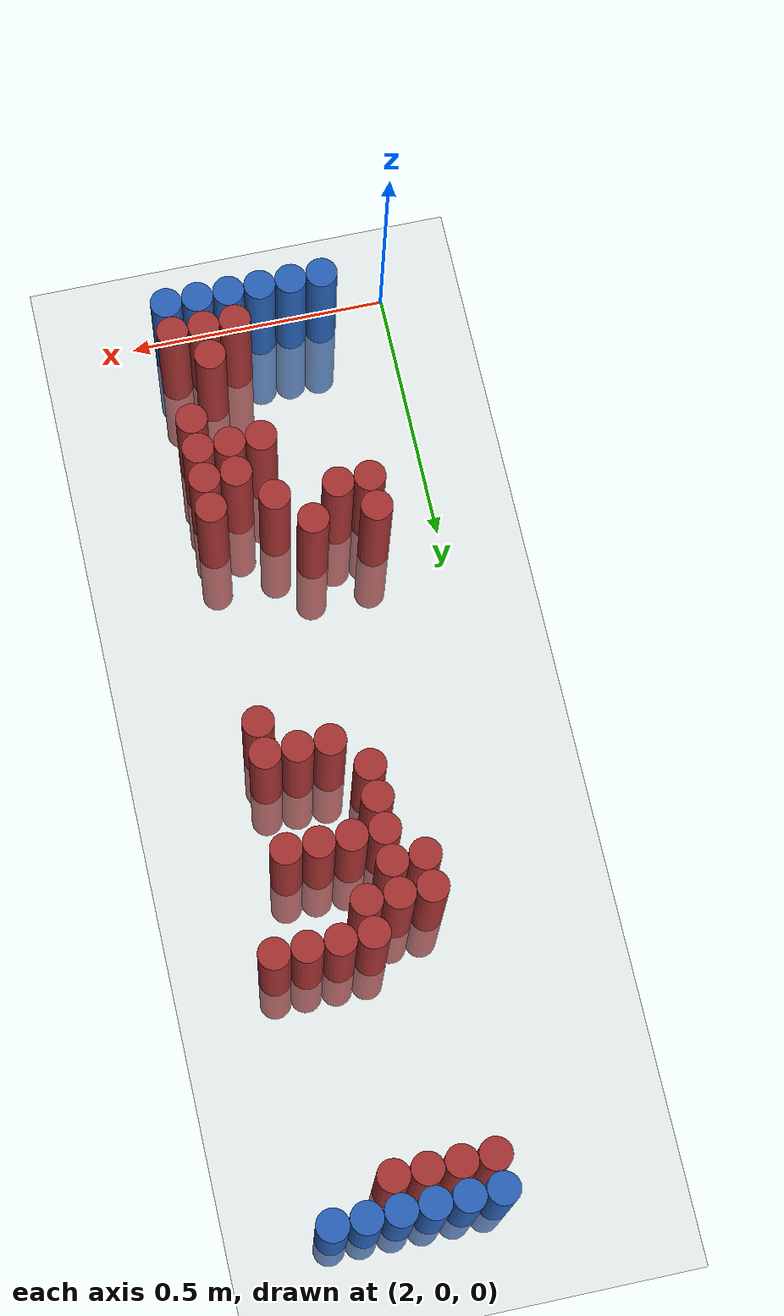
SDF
<sdf version="1.6">
 <world name="default">
  <model name="ground_plane">
   <static>1</static>
   <link name="link">
    <collision name="collision">
     <geometry><plane><normal>0 0 1</normal><size>100 100</size></plane></geometry>
     <surface><friction><ode><mu>100</mu><mu2>50</mu2></ode></friction></surface>
    </collision>
    <visual name="visual">
     <cast_shadows>0</cast_shadows>
     <geometry><plane><normal>0 0 1</normal><size>100 100</size></plane></geometry>
     <material>
      <script><uri>file://media/materials/scripts/gazebo.material</uri><name>Gazebo/Grey</name></script>
     </material>
    </visual>
   </link>
  </model>
  <model name="unit_cylinder_97">
   <static>1</static>
   <pose>2.190000 1.770000 0.000000 0.000000 0.000000 0.000000</pose>
   <link name="link">
    <inertial>
     <mass>1</mass>
     <inertia><ixx>0.145833</ixx><ixy>0</ixy><ixz>0</ixz><iyy>0.145833</iyy><iyz>0</iyz><izz>0.125</izz></inertia>
    </inertial>
    <collision name="collision">
     <geometry><cylinder><radius>0.030000</radius><length>0.5</length></cylinder></geometry>
    </collision>
    <visual name="visual">
     <geometry><cylinder><radius>0.030000</radius><length>0.5</length></cylinder></geometry>
     <material>
      <ambient>0.152000 0.379000 0.720000 1</ambient>
      <diffuse>0.152000 0.379000 0.720000 1</diffuse>
     </material>
     <material>
      <script><name>Gazebo/Grey</name><uri>file://media/materials/scripts/gazebo.material</uri></script>
     </material>
    </visual>
   </link>
  </model>
  <model name="unit_cylinder_98">
   <static>1</static>
   <pose>2.250000 1.770000 0.000000 0.000000 0.000000 0.000000</pose>
   <link name="link">
    <inertial>
     <mass>1</mass>
     <inertia><ixx>0.145833</ixx><ixy>0</ixy><ixz>0</ixz><iyy>0.145833</iyy><iyz>0</iyz><izz>0.125</izz></inertia>
    </inertial>
    <collision name="collision">
     <geometry><cylinder><radius>0.030000</radius><length>0.5</length></cylinder></geometry>
    </collision>
    <visual name="visual">
     <geometry><cylinder><radius>0.030000</radius><length>0.5</length></cylinder></geometry>
     <material>
      <ambient>0.152000 0.379000 0.720000 1</ambient>
      <diffuse>0.152000 0.379000 0.720000 1</diffuse>
     </material>
     <material>
      <script><name>Gazebo/Grey</name><uri>file://media/materials/scripts/gazebo.material</uri></script>
     </material>
    </visual>
   </link>
  </model>
  <model name="unit_cylinder_99">
   <static>1</static>
   <pose>2.310000 1.770000 0.000000 0.000000 0.000000 0.000000</pose>
   <link name="link">
    <inertial>
     <mass>1</mass>
     <inertia><ixx>0.145833</ixx><ixy>0</ixy><ixz>0</ixz><iyy>0.145833</iyy><iyz>0</iyz><izz>0.125</izz></inertia>
    </inertial>
    <collision name="collision">
     <geometry><cylinder><radius>0.030000</radius><length>0.5</length></cylinder></geometry>
    </collision>
    <visual name="visual">
     <geometry><cylinder><radius>0.030000</radius><length>0.5</length></cylinder></geometry>
     <material>
      <ambient>0.152000 0.379000 0.720000 1</ambient>
      <diffuse>0.152000 0.379000 0.720000 1</diffuse>
     </material>
     <material>
      <script><name>Gazebo/Grey</name><uri>file://media/materials/scripts/gazebo.material</uri></script>
     </material>
    </visual>
   </link>
  </model>
  <model name="unit_cylinder_100">
   <static>1</static>
   <pose>2.370000 1.770000 0.000000 0.000000 0.000000 0.000000</pose>
   <link name="link">
    <inertial>
     <mass>1</mass>
     <inertia><ixx>0.145833</ixx><ixy>0</ixy><ixz>0</ixz><iyy>0.145833</iyy><iyz>0</iyz><izz>0.125</izz></inertia>
    </inertial>
    <collision name="collision">
     <geometry><cylinder><radius>0.030000</radius><length>0.5</length></cylinder></geometry>
    </collision>
    <visual name="visual">
     <geometry><cylinder><radius>0.030000</radius><length>0.5</length></cylinder></geometry>
     <material>
      <ambient>0.152000 0.379000 0.720000 1</ambient>
      <diffuse>0.152000 0.379000 0.720000 1</diffuse>
     </material>
     <material>
      <script><name>Gazebo/Grey</name><uri>file://media/materials/scripts/gazebo.material</uri></script>
     </material>
    </visual>
   </link>
  </model>
  <model name="unit_cylinder_101">
   <static>1</static>
   <pose>2.430000 1.770000 0.000000 0.000000 0.000000 0.000000</pose>
   <link name="link">
    <inertial>
     <mass>1</mass>
     <inertia><ixx>0.145833</ixx><ixy>0</ixy><ixz>0</ixz><iyy>0.145833</iyy><iyz>0</iyz><izz>0.125</izz></inertia>
    </inertial>
    <collision name="collision">
     <geometry><cylinder><radius>0.030000</radius><length>0.5</length></cylinder></geometry>
    </collision>
    <visual name="visual">
     <geometry><cylinder><radius>0.030000</radius><length>0.5</length></cylinder></geometry>
     <material>
      <ambient>0.152000 0.379000 0.720000 1</ambient>
      <diffuse>0.152000 0.379000 0.720000 1</diffuse>
     </material>
     <material>
      <script><name>Gazebo/Grey</name><uri>file://media/materials/scripts/gazebo.material</uri></script>
     </material>
    </visual>
   </link>
  </model>
  <model name="unit_cylinder_102">
   <static>1</static>
   <pose>2.490000 1.770000 0.000000 0.000000 0.000000 0.000000</pose>
   <link name="link">
    <inertial>
     <mass>1</mass>
     <inertia><ixx>0.145833</ixx><ixy>0</ixy><ixz>0</ixz><iyy>0.145833</iyy><iyz>0</iyz><izz>0.125</izz></inertia>
    </inertial>
    <collision name="collision">
     <geometry><cylinder><radius>0.030000</radius><length>0.5</length></cylinder></geometry>
    </collision>
    <visual name="visual">
     <geometry><cylinder><radius>0.030000</radius><length>0.5</length></cylinder></geometry>
     <material>
      <ambient>0.152000 0.379000 0.720000 1</ambient>
      <diffuse>0.152000 0.379000 0.720000 1</diffuse>
     </material>
     <material>
      <script><name>Gazebo/Grey</name><uri>file://media/materials/scripts/gazebo.material</uri></script>
     </material>
    </visual>
   </link>
  </model>
  <model name="unit_cylinder_126">
   <static>1</static>
   <pose>2.190000 1.710000 0.000000 0.000000 0.000000 0.000000</pose>
   <link name="link">
    <inertial>
     <mass>1</mass>
     <inertia><ixx>0.145833</ixx><ixy>0</ixy><ixz>0</ixz><iyy>0.145833</iyy><iyz>0</iyz><izz>0.125</izz></inertia>
    </inertial>
    <collision name="collision">
     <geometry><cylinder><radius>0.030000</radius><length>0.5</length></cylinder></geometry>
    </collision>
    <visual name="visual">
     <geometry><cylinder><radius>0.030000</radius><length>0.5</length></cylinder></geometry>
     <material>
      <ambient>0.648000 0.192000 0.192000 1</ambient>
      <diffuse>0.648000 0.192000 0.192000 1</diffuse>
     </material>
     <material>
      <script><name>Gazebo/Grey</name><uri>file://media/materials/scripts/gazebo.material</uri></script>
     </material>
    </visual>
   </link>
  </model>
  <model name="unit_cylinder_127">
   <static>1</static>
   <pose>2.250000 1.710000 0.000000 0.000000 0.000000 0.000000</pose>
   <link name="link">
    <inertial>
     <mass>1</mass>
     <inertia><ixx>0.145833</ixx><ixy>0</ixy><ixz>0</ixz><iyy>0.145833</iyy><iyz>0</iyz><izz>0.125</izz></inertia>
    </inertial>
    <collision name="collision">
     <geometry><cylinder><radius>0.030000</radius><length>0.5</length></cylinder></geometry>
    </collision>
    <visual name="visual">
     <geometry><cylinder><radius>0.030000</radius><length>0.5</length></cylinder></geometry>
     <material>
      <ambient>0.648000 0.192000 0.192000 1</ambient>
      <diffuse>0.648000 0.192000 0.192000 1</diffuse>
     </material>
     <material>
      <script><name>Gazebo/Grey</name><uri>file://media/materials/scripts/gazebo.material</uri></script>
     </material>
    </visual>
   </link>
  </model>
  <model name="unit_cylinder_128">
   <static>1</static>
   <pose>2.310000 1.710000 0.000000 0.000000 0.000000 0.000000</pose>
   <link name="link">
    <inertial>
     <mass>1</mass>
     <inertia><ixx>0.145833</ixx><ixy>0</ixy><ixz>0</ixz><iyy>0.145833</iyy><iyz>0</iyz><izz>0.125</izz></inertia>
    </inertial>
    <collision name="collision">
     <geometry><cylinder><radius>0.030000</radius><length>0.5</length></cylinder></geometry>
    </collision>
    <visual name="visual">
     <geometry><cylinder><radius>0.030000</radius><length>0.5</length></cylinder></geometry>
     <material>
      <ambient>0.648000 0.192000 0.192000 1</ambient>
      <diffuse>0.648000 0.192000 0.192000 1</diffuse>
     </material>
     <material>
      <script><name>Gazebo/Grey</name><uri>file://media/materials/scripts/gazebo.material</uri></script>
     </material>
    </visual>
   </link>
  </model>
  <model name="unit_cylinder_129">
   <static>1</static>
   <pose>2.370000 1.710000 0.000000 0.000000 0.000000 0.000000</pose>
   <link name="link">
    <inertial>
     <mass>1</mass>
     <inertia><ixx>0.145833</ixx><ixy>0</ixy><ixz>0</ixz><iyy>0.145833</iyy><iyz>0</iyz><izz>0.125</izz></inertia>
    </inertial>
    <collision name="collision">
     <geometry><cylinder><radius>0.030000</radius><length>0.5</length></cylinder></geometry>
    </collision>
    <visual name="visual">
     <geometry><cylinder><radius>0.030000</radius><length>0.5</length></cylinder></geometry>
     <material>
      <ambient>0.648000 0.192000 0.192000 1</ambient>
      <diffuse>0.648000 0.192000 0.192000 1</diffuse>
     </material>
     <material>
      <script><name>Gazebo/Grey</name><uri>file://media/materials/scripts/gazebo.material</uri></script>
     </material>
    </visual>
   </link>
  </model>
  <model name="unit_cylinder_165">
   <static>1</static>
   <pose>2.310000 1.290000 0.000000 0.000000 0.000000 0.000000</pose>
   <link name="link">
    <inertial>
     <mass>1</mass>
     <inertia><ixx>0.145833</ixx><ixy>0</ixy><ixz>0</ixz><iyy>0.145833</iyy><iyz>0</iyz><izz>0.125</izz></inertia>
    </inertial>
    <collision name="collision">
     <geometry><cylinder><radius>0.030000</radius><length>0.5</length></cylinder></geometry>
    </collision>
    <visual name="visual">
     <geometry><cylinder><radius>0.030000</radius><length>0.5</length></cylinder></geometry>
     <material>
      <ambient>0.648000 0.192000 0.192000 1</ambient>
      <diffuse>0.648000 0.192000 0.192000 1</diffuse>
     </material>
     <material>
      <script><name>Gazebo/Grey</name><uri>file://media/materials/scripts/gazebo.material</uri></script>
     </material>
    </visual>
   </link>
  </model>
  <model name="unit_cylinder_166">
   <static>1</static>
   <pose>2.370000 1.290000 0.000000 0.000000 0.000000 0.000000</pose>
   <link name="link">
    <inertial>
     <mass>1</mass>
     <inertia><ixx>0.145833</ixx><ixy>0</ixy><ixz>0</ixz><iyy>0.145833</iyy><iyz>0</iyz><izz>0.125</izz></inertia>
    </inertial>
    <collision name="collision">
     <geometry><cylinder><radius>0.030000</radius><length>0.5</length></cylinder></geometry>
    </collision>
    <visual name="visual">
     <geometry><cylinder><radius>0.030000</radius><length>0.5</length></cylinder></geometry>
     <material>
      <ambient>0.648000 0.192000 0.192000 1</ambient>
      <diffuse>0.648000 0.192000 0.192000 1</diffuse>
     </material>
     <material>
      <script><name>Gazebo/Grey</name><uri>file://media/materials/scripts/gazebo.material</uri></script>
     </material>
    </visual>
   </link>
  </model>
  <model name="unit_cylinder_167">
   <static>1</static>
   <pose>2.430000 1.290000 0.000000 0.000000 0.000000 0.000000</pose>
   <link name="link">
    <inertial>
     <mass>1</mass>
     <inertia><ixx>0.145833</ixx><ixy>0</ixy><ixz>0</ixz><iyy>0.145833</iyy><iyz>0</iyz><izz>0.125</izz></inertia>
    </inertial>
    <collision name="collision">
     <geometry><cylinder><radius>0.030000</radius><length>0.5</length></cylinder></geometry>
    </collision>
    <visual name="visual">
     <geometry><cylinder><radius>0.030000</radius><length>0.5</length></cylinder></geometry>
     <material>
      <ambient>0.648000 0.192000 0.192000 1</ambient>
      <diffuse>0.648000 0.192000 0.192000 1</diffuse>
     </material>
     <material>
      <script><name>Gazebo/Grey</name><uri>file://media/materials/scripts/gazebo.material</uri></script>
     </material>
    </visual>
   </link>
  </model>
  <model name="unit_cylinder_168">
   <static>1</static>
   <pose>2.490000 1.290000 0.000000 0.000000 0.000000 0.000000</pose>
   <link name="link">
    <inertial>
     <mass>1</mass>
     <inertia><ixx>0.145833</ixx><ixy>0</ixy><ixz>0</ixz><iyy>0.145833</iyy><iyz>0</iyz><izz>0.125</izz></inertia>
    </inertial>
    <collision name="collision">
     <geometry><cylinder><radius>0.030000</radius><length>0.5</length></cylinder></geometry>
    </collision>
    <visual name="visual">
     <geometry><cylinder><radius>0.030000</radius><length>0.5</length></cylinder></geometry>
     <material>
      <ambient>0.648000 0.192000 0.192000 1</ambient>
      <diffuse>0.648000 0.192000 0.192000 1</diffuse>
     </material>
     <material>
      <script><name>Gazebo/Grey</name><uri>file://media/materials/scripts/gazebo.material</uri></script>
     </material>
    </visual>
   </link>
  </model>
  <model name="unit_cylinder_172">
   <static>1</static>
   <pose>2.190000 1.230000 0.000000 0.000000 0.000000 0.000000</pose>
   <link name="link">
    <inertial>
     <mass>1</mass>
     <inertia><ixx>0.145833</ixx><ixy>0</ixy><ixz>0</ixz><iyy>0.145833</iyy><iyz>0</iyz><izz>0.125</izz></inertia>
    </inertial>
    <collision name="collision">
     <geometry><cylinder><radius>0.030000</radius><length>0.5</length></cylinder></geometry>
    </collision>
    <visual name="visual">
     <geometry><cylinder><radius>0.030000</radius><length>0.5</length></cylinder></geometry>
     <material>
      <ambient>0.648000 0.192000 0.192000 1</ambient>
      <diffuse>0.648000 0.192000 0.192000 1</diffuse>
     </material>
     <material>
      <script><name>Gazebo/Grey</name><uri>file://media/materials/scripts/gazebo.material</uri></script>
     </material>
    </visual>
   </link>
  </model>
  <model name="unit_cylinder_173">
   <static>1</static>
   <pose>2.250000 1.230000 0.000000 0.000000 0.000000 0.000000</pose>
   <link name="link">
    <inertial>
     <mass>1</mass>
     <inertia><ixx>0.145833</ixx><ixy>0</ixy><ixz>0</ixz><iyy>0.145833</iyy><iyz>0</iyz><izz>0.125</izz></inertia>
    </inertial>
    <collision name="collision">
     <geometry><cylinder><radius>0.030000</radius><length>0.5</length></cylinder></geometry>
    </collision>
    <visual name="visual">
     <geometry><cylinder><radius>0.030000</radius><length>0.5</length></cylinder></geometry>
     <material>
      <ambient>0.648000 0.192000 0.192000 1</ambient>
      <diffuse>0.648000 0.192000 0.192000 1</diffuse>
     </material>
     <material>
      <script><name>Gazebo/Grey</name><uri>file://media/materials/scripts/gazebo.material</uri></script>
     </material>
    </visual>
   </link>
  </model>
  <model name="unit_cylinder_174">
   <static>1</static>
   <pose>2.310000 1.230000 0.000000 0.000000 0.000000 0.000000</pose>
   <link name="link">
    <inertial>
     <mass>1</mass>
     <inertia><ixx>0.145833</ixx><ixy>0</ixy><ixz>0</ixz><iyy>0.145833</iyy><iyz>0</iyz><izz>0.125</izz></inertia>
    </inertial>
    <collision name="collision">
     <geometry><cylinder><radius>0.030000</radius><length>0.5</length></cylinder></geometry>
    </collision>
    <visual name="visual">
     <geometry><cylinder><radius>0.030000</radius><length>0.5</length></cylinder></geometry>
     <material>
      <ambient>0.648000 0.192000 0.192000 1</ambient>
      <diffuse>0.648000 0.192000 0.192000 1</diffuse>
     </material>
     <material>
      <script><name>Gazebo/Grey</name><uri>file://media/materials/scripts/gazebo.material</uri></script>
     </material>
    </visual>
   </link>
  </model>
  <model name="unit_cylinder_179">
   <static>1</static>
   <pose>2.190000 1.170000 0.000000 0.000000 0.000000 0.000000</pose>
   <link name="link">
    <inertial>
     <mass>1</mass>
     <inertia><ixx>0.145833</ixx><ixy>0</ixy><ixz>0</ixz><iyy>0.145833</iyy><iyz>0</iyz><izz>0.125</izz></inertia>
    </inertial>
    <collision name="collision">
     <geometry><cylinder><radius>0.030000</radius><length>0.5</length></cylinder></geometry>
    </collision>
    <visual name="visual">
     <geometry><cylinder><radius>0.030000</radius><length>0.5</length></cylinder></geometry>
     <material>
      <ambient>0.648000 0.192000 0.192000 1</ambient>
      <diffuse>0.648000 0.192000 0.192000 1</diffuse>
     </material>
     <material>
      <script><name>Gazebo/Grey</name><uri>file://media/materials/scripts/gazebo.material</uri></script>
     </material>
    </visual>
   </link>
  </model>
  <model name="unit_cylinder_180">
   <static>1</static>
   <pose>2.250000 1.170000 0.000000 0.000000 0.000000 0.000000</pose>
   <link name="link">
    <inertial>
     <mass>1</mass>
     <inertia><ixx>0.145833</ixx><ixy>0</ixy><ixz>0</ixz><iyy>0.145833</iyy><iyz>0</iyz><izz>0.125</izz></inertia>
    </inertial>
    <collision name="collision">
     <geometry><cylinder><radius>0.030000</radius><length>0.5</length></cylinder></geometry>
    </collision>
    <visual name="visual">
     <geometry><cylinder><radius>0.030000</radius><length>0.5</length></cylinder></geometry>
     <material>
      <ambient>0.648000 0.192000 0.192000 1</ambient>
      <diffuse>0.648000 0.192000 0.192000 1</diffuse>
     </material>
     <material>
      <script><name>Gazebo/Grey</name><uri>file://media/materials/scripts/gazebo.material</uri></script>
     </material>
    </visual>
   </link>
  </model>
  <model name="unit_cylinder_186">
   <static>1</static>
   <pose>2.250000 1.110000 0.000000 0.000000 0.000000 0.000000</pose>
   <link name="link">
    <inertial>
     <mass>1</mass>
     <inertia><ixx>0.145833</ixx><ixy>0</ixy><ixz>0</ixz><iyy>0.145833</iyy><iyz>0</iyz><izz>0.125</izz></inertia>
    </inertial>
    <collision name="collision">
     <geometry><cylinder><radius>0.030000</radius><length>0.5</length></cylinder></geometry>
    </collision>
    <visual name="visual">
     <geometry><cylinder><radius>0.030000</radius><length>0.5</length></cylinder></geometry>
     <material>
      <ambient>0.648000 0.192000 0.192000 1</ambient>
      <diffuse>0.648000 0.192000 0.192000 1</diffuse>
     </material>
     <material>
      <script><name>Gazebo/Grey</name><uri>file://media/materials/scripts/gazebo.material</uri></script>
     </material>
    </visual>
   </link>
  </model>
  <model name="unit_cylinder_187">
   <static>1</static>
   <pose>2.310000 1.110000 0.000000 0.000000 0.000000 0.000000</pose>
   <link name="link">
    <inertial>
     <mass>1</mass>
     <inertia><ixx>0.145833</ixx><ixy>0</ixy><ixz>0</ixz><iyy>0.145833</iyy><iyz>0</iyz><izz>0.125</izz></inertia>
    </inertial>
    <collision name="collision">
     <geometry><cylinder><radius>0.030000</radius><length>0.5</length></cylinder></geometry>
    </collision>
    <visual name="visual">
     <geometry><cylinder><radius>0.030000</radius><length>0.5</length></cylinder></geometry>
     <material>
      <ambient>0.648000 0.192000 0.192000 1</ambient>
      <diffuse>0.648000 0.192000 0.192000 1</diffuse>
     </material>
     <material>
      <script><name>Gazebo/Grey</name><uri>file://media/materials/scripts/gazebo.material</uri></script>
     </material>
    </visual>
   </link>
  </model>
  <model name="unit_cylinder_188">
   <static>1</static>
   <pose>2.370000 1.110000 0.000000 0.000000 0.000000 0.000000</pose>
   <link name="link">
    <inertial>
     <mass>1</mass>
     <inertia><ixx>0.145833</ixx><ixy>0</ixy><ixz>0</ixz><iyy>0.145833</iyy><iyz>0</iyz><izz>0.125</izz></inertia>
    </inertial>
    <collision name="collision">
     <geometry><cylinder><radius>0.030000</radius><length>0.5</length></cylinder></geometry>
    </collision>
    <visual name="visual">
     <geometry><cylinder><radius>0.030000</radius><length>0.5</length></cylinder></geometry>
     <material>
      <ambient>0.648000 0.192000 0.192000 1</ambient>
      <diffuse>0.648000 0.192000 0.192000 1</diffuse>
     </material>
     <material>
      <script><name>Gazebo/Grey</name><uri>file://media/materials/scripts/gazebo.material</uri></script>
     </material>
    </visual>
   </link>
  </model>
  <model name="unit_cylinder_189">
   <static>1</static>
   <pose>2.430000 1.110000 0.000000 0.000000 0.000000 0.000000</pose>
   <link name="link">
    <inertial>
     <mass>1</mass>
     <inertia><ixx>0.145833</ixx><ixy>0</ixy><ixz>0</ixz><iyy>0.145833</iyy><iyz>0</iyz><izz>0.125</izz></inertia>
    </inertial>
    <collision name="collision">
     <geometry><cylinder><radius>0.030000</radius><length>0.5</length></cylinder></geometry>
    </collision>
    <visual name="visual">
     <geometry><cylinder><radius>0.030000</radius><length>0.5</length></cylinder></geometry>
     <material>
      <ambient>0.648000 0.192000 0.192000 1</ambient>
      <diffuse>0.648000 0.192000 0.192000 1</diffuse>
     </material>
     <material>
      <script><name>Gazebo/Grey</name><uri>file://media/materials/scripts/gazebo.material</uri></script>
     </material>
    </visual>
   </link>
  </model>
  <model name="unit_cylinder_196">
   <static>1</static>
   <pose>2.250000 1.050000 0.000000 0.000000 0.000000 0.000000</pose>
   <link name="link">
    <inertial>
     <mass>1</mass>
     <inertia><ixx>0.145833</ixx><ixy>0</ixy><ixz>0</ixz><iyy>0.145833</iyy><iyz>0</iyz><izz>0.125</izz></inertia>
    </inertial>
    <collision name="collision">
     <geometry><cylinder><radius>0.030000</radius><length>0.5</length></cylinder></geometry>
    </collision>
    <visual name="visual">
     <geometry><cylinder><radius>0.030000</radius><length>0.5</length></cylinder></geometry>
     <material>
      <ambient>0.648000 0.192000 0.192000 1</ambient>
      <diffuse>0.648000 0.192000 0.192000 1</diffuse>
     </material>
     <material>
      <script><name>Gazebo/Grey</name><uri>file://media/materials/scripts/gazebo.material</uri></script>
     </material>
    </visual>
   </link>
  </model>
  <model name="unit_cylinder_200">
   <static>1</static>
   <pose>2.250000 0.990000 0.000000 0.000000 0.000000 0.000000</pose>
   <link name="link">
    <inertial>
     <mass>1</mass>
     <inertia><ixx>0.145833</ixx><ixy>0</ixy><ixz>0</ixz><iyy>0.145833</iyy><iyz>0</iyz><izz>0.125</izz></inertia>
    </inertial>
    <collision name="collision">
     <geometry><cylinder><radius>0.030000</radius><length>0.5</length></cylinder></geometry>
    </collision>
    <visual name="visual">
     <geometry><cylinder><radius>0.030000</radius><length>0.5</length></cylinder></geometry>
     <material>
      <ambient>0.648000 0.192000 0.192000 1</ambient>
      <diffuse>0.648000 0.192000 0.192000 1</diffuse>
     </material>
     <material>
      <script><name>Gazebo/Grey</name><uri>file://media/materials/scripts/gazebo.material</uri></script>
     </material>
    </visual>
   </link>
  </model>
  <model name="unit_cylinder_201">
   <static>1</static>
   <pose>2.310000 0.930000 0.000000 0.000000 0.000000 0.000000</pose>
   <link name="link">
    <inertial>
     <mass>1</mass>
     <inertia><ixx>0.145833</ixx><ixy>0</ixy><ixz>0</ixz><iyy>0.145833</iyy><iyz>0</iyz><izz>0.125</izz></inertia>
    </inertial>
    <collision name="collision">
     <geometry><cylinder><radius>0.030000</radius><length>0.5</length></cylinder></geometry>
    </collision>
    <visual name="visual">
     <geometry><cylinder><radius>0.030000</radius><length>0.5</length></cylinder></geometry>
     <material>
      <ambient>0.648000 0.192000 0.192000 1</ambient>
      <diffuse>0.648000 0.192000 0.192000 1</diffuse>
     </material>
     <material>
      <script><name>Gazebo/Grey</name><uri>file://media/materials/scripts/gazebo.material</uri></script>
     </material>
    </visual>
   </link>
  </model>
  <model name="unit_cylinder_202">
   <static>1</static>
   <pose>2.370000 0.930000 0.000000 0.000000 0.000000 0.000000</pose>
   <link name="link">
    <inertial>
     <mass>1</mass>
     <inertia><ixx>0.145833</ixx><ixy>0</ixy><ixz>0</ixz><iyy>0.145833</iyy><iyz>0</iyz><izz>0.125</izz></inertia>
    </inertial>
    <collision name="collision">
     <geometry><cylinder><radius>0.030000</radius><length>0.5</length></cylinder></geometry>
    </collision>
    <visual name="visual">
     <geometry><cylinder><radius>0.030000</radius><length>0.5</length></cylinder></geometry>
     <material>
      <ambient>0.648000 0.192000 0.192000 1</ambient>
      <diffuse>0.648000 0.192000 0.192000 1</diffuse>
     </material>
     <material>
      <script><name>Gazebo/Grey</name><uri>file://media/materials/scripts/gazebo.material</uri></script>
     </material>
    </visual>
   </link>
  </model>
  <model name="unit_cylinder_203">
   <static>1</static>
   <pose>2.430000 0.930000 0.000000 0.000000 0.000000 0.000000</pose>
   <link name="link">
    <inertial>
     <mass>1</mass>
     <inertia><ixx>0.145833</ixx><ixy>0</ixy><ixz>0</ixz><iyy>0.145833</iyy><iyz>0</iyz><izz>0.125</izz></inertia>
    </inertial>
    <collision name="collision">
     <geometry><cylinder><radius>0.030000</radius><length>0.5</length></cylinder></geometry>
    </collision>
    <visual name="visual">
     <geometry><cylinder><radius>0.030000</radius><length>0.5</length></cylinder></geometry>
     <material>
      <ambient>0.648000 0.192000 0.192000 1</ambient>
      <diffuse>0.648000 0.192000 0.192000 1</diffuse>
     </material>
     <material>
      <script><name>Gazebo/Grey</name><uri>file://media/materials/scripts/gazebo.material</uri></script>
     </material>
    </visual>
   </link>
  </model>
  <model name="unit_cylinder_207">
   <static>1</static>
   <pose>2.430000 0.870000 0.000000 0.000000 0.000000 0.000000</pose>
   <link name="link">
    <inertial>
     <mass>1</mass>
     <inertia><ixx>0.145833</ixx><ixy>0</ixy><ixz>0</ixz><iyy>0.145833</iyy><iyz>0</iyz><izz>0.125</izz></inertia>
    </inertial>
    <collision name="collision">
     <geometry><cylinder><radius>0.030000</radius><length>0.5</length></cylinder></geometry>
    </collision>
    <visual name="visual">
     <geometry><cylinder><radius>0.030000</radius><length>0.5</length></cylinder></geometry>
     <material>
      <ambient>0.648000 0.192000 0.192000 1</ambient>
      <diffuse>0.648000 0.192000 0.192000 1</diffuse>
     </material>
     <material>
      <script><name>Gazebo/Grey</name><uri>file://media/materials/scripts/gazebo.material</uri></script>
     </material>
    </visual>
   </link>
  </model>
  <model name="unit_cylinder_229">
   <static>1</static>
   <pose>2.130000 0.510000 0.000000 0.000000 0.000000 0.000000</pose>
   <link name="link">
    <inertial>
     <mass>1</mass>
     <inertia><ixx>0.145833</ixx><ixy>0</ixy><ixz>0</ixz><iyy>0.145833</iyy><iyz>0</iyz><izz>0.125</izz></inertia>
    </inertial>
    <collision name="collision">
     <geometry><cylinder><radius>0.030000</radius><length>0.5</length></cylinder></geometry>
    </collision>
    <visual name="visual">
     <geometry><cylinder><radius>0.030000</radius><length>0.5</length></cylinder></geometry>
     <material>
      <ambient>0.648000 0.192000 0.192000 1</ambient>
      <diffuse>0.648000 0.192000 0.192000 1</diffuse>
     </material>
     <material>
      <script><name>Gazebo/Grey</name><uri>file://media/materials/scripts/gazebo.material</uri></script>
     </material>
    </visual>
   </link>
  </model>
  <model name="unit_cylinder_230">
   <static>1</static>
   <pose>2.250000 0.510000 0.000000 0.000000 0.000000 0.000000</pose>
   <link name="link">
    <inertial>
     <mass>1</mass>
     <inertia><ixx>0.145833</ixx><ixy>0</ixy><ixz>0</ixz><iyy>0.145833</iyy><iyz>0</iyz><izz>0.125</izz></inertia>
    </inertial>
    <collision name="collision">
     <geometry><cylinder><radius>0.030000</radius><length>0.5</length></cylinder></geometry>
    </collision>
    <visual name="visual">
     <geometry><cylinder><radius>0.030000</radius><length>0.5</length></cylinder></geometry>
     <material>
      <ambient>0.648000 0.192000 0.192000 1</ambient>
      <diffuse>0.648000 0.192000 0.192000 1</diffuse>
     </material>
     <material>
      <script><name>Gazebo/Grey</name><uri>file://media/materials/scripts/gazebo.material</uri></script>
     </material>
    </visual>
   </link>
  </model>
  <model name="unit_cylinder_232">
   <static>1</static>
   <pose>2.130000 0.450000 0.000000 0.000000 0.000000 0.000000</pose>
   <link name="link">
    <inertial>
     <mass>1</mass>
     <inertia><ixx>0.145833</ixx><ixy>0</ixy><ixz>0</ixz><iyy>0.145833</iyy><iyz>0</iyz><izz>0.125</izz></inertia>
    </inertial>
    <collision name="collision">
     <geometry><cylinder><radius>0.030000</radius><length>0.5</length></cylinder></geometry>
    </collision>
    <visual name="visual">
     <geometry><cylinder><radius>0.030000</radius><length>0.5</length></cylinder></geometry>
     <material>
      <ambient>0.648000 0.192000 0.192000 1</ambient>
      <diffuse>0.648000 0.192000 0.192000 1</diffuse>
     </material>
     <material>
      <script><name>Gazebo/Grey</name><uri>file://media/materials/scripts/gazebo.material</uri></script>
     </material>
    </visual>
   </link>
  </model>
  <model name="unit_cylinder_233">
   <static>1</static>
   <pose>2.190000 0.450000 0.000000 0.000000 0.000000 0.000000</pose>
   <link name="link">
    <inertial>
     <mass>1</mass>
     <inertia><ixx>0.145833</ixx><ixy>0</ixy><ixz>0</ixz><iyy>0.145833</iyy><iyz>0</iyz><izz>0.125</izz></inertia>
    </inertial>
    <collision name="collision">
     <geometry><cylinder><radius>0.030000</radius><length>0.5</length></cylinder></geometry>
    </collision>
    <visual name="visual">
     <geometry><cylinder><radius>0.030000</radius><length>0.5</length></cylinder></geometry>
     <material>
      <ambient>0.648000 0.192000 0.192000 1</ambient>
      <diffuse>0.648000 0.192000 0.192000 1</diffuse>
     </material>
     <material>
      <script><name>Gazebo/Grey</name><uri>file://media/materials/scripts/gazebo.material</uri></script>
     </material>
    </visual>
   </link>
  </model>
  <model name="unit_cylinder_234">
   <static>1</static>
   <pose>2.310000 0.450000 0.000000 0.000000 0.000000 0.000000</pose>
   <link name="link">
    <inertial>
     <mass>1</mass>
     <inertia><ixx>0.145833</ixx><ixy>0</ixy><ixz>0</ixz><iyy>0.145833</iyy><iyz>0</iyz><izz>0.125</izz></inertia>
    </inertial>
    <collision name="collision">
     <geometry><cylinder><radius>0.030000</radius><length>0.5</length></cylinder></geometry>
    </collision>
    <visual name="visual">
     <geometry><cylinder><radius>0.030000</radius><length>0.5</length></cylinder></geometry>
     <material>
      <ambient>0.648000 0.192000 0.192000 1</ambient>
      <diffuse>0.648000 0.192000 0.192000 1</diffuse>
     </material>
     <material>
      <script><name>Gazebo/Grey</name><uri>file://media/materials/scripts/gazebo.material</uri></script>
     </material>
    </visual>
   </link>
  </model>
  <model name="unit_cylinder_235">
   <static>1</static>
   <pose>2.430000 0.450000 0.000000 0.000000 0.000000 0.000000</pose>
   <link name="link">
    <inertial>
     <mass>1</mass>
     <inertia><ixx>0.145833</ixx><ixy>0</ixy><ixz>0</ixz><iyy>0.145833</iyy><iyz>0</iyz><izz>0.125</izz></inertia>
    </inertial>
    <collision name="collision">
     <geometry><cylinder><radius>0.030000</radius><length>0.5</length></cylinder></geometry>
    </collision>
    <visual name="visual">
     <geometry><cylinder><radius>0.030000</radius><length>0.5</length></cylinder></geometry>
     <material>
      <ambient>0.648000 0.192000 0.192000 1</ambient>
      <diffuse>0.648000 0.192000 0.192000 1</diffuse>
     </material>
     <material>
      <script><name>Gazebo/Grey</name><uri>file://media/materials/scripts/gazebo.material</uri></script>
     </material>
    </visual>
   </link>
  </model>
  <model name="unit_cylinder_238">
   <static>1</static>
   <pose>2.370000 0.390000 0.000000 0.000000 0.000000 0.000000</pose>
   <link name="link">
    <inertial>
     <mass>1</mass>
     <inertia><ixx>0.145833</ixx><ixy>0</ixy><ixz>0</ixz><iyy>0.145833</iyy><iyz>0</iyz><izz>0.125</izz></inertia>
    </inertial>
    <collision name="collision">
     <geometry><cylinder><radius>0.030000</radius><length>0.5</length></cylinder></geometry>
    </collision>
    <visual name="visual">
     <geometry><cylinder><radius>0.030000</radius><length>0.5</length></cylinder></geometry>
     <material>
      <ambient>0.648000 0.192000 0.192000 1</ambient>
      <diffuse>0.648000 0.192000 0.192000 1</diffuse>
     </material>
     <material>
      <script><name>Gazebo/Grey</name><uri>file://media/materials/scripts/gazebo.material</uri></script>
     </material>
    </visual>
   </link>
  </model>
  <model name="unit_cylinder_239">
   <static>1</static>
   <pose>2.430000 0.390000 0.000000 0.000000 0.000000 0.000000</pose>
   <link name="link">
    <inertial>
     <mass>1</mass>
     <inertia><ixx>0.145833</ixx><ixy>0</ixy><ixz>0</ixz><iyy>0.145833</iyy><iyz>0</iyz><izz>0.125</izz></inertia>
    </inertial>
    <collision name="collision">
     <geometry><cylinder><radius>0.030000</radius><length>0.5</length></cylinder></geometry>
    </collision>
    <visual name="visual">
     <geometry><cylinder><radius>0.030000</radius><length>0.5</length></cylinder></geometry>
     <material>
      <ambient>0.648000 0.192000 0.192000 1</ambient>
      <diffuse>0.648000 0.192000 0.192000 1</diffuse>
     </material>
     <material>
      <script><name>Gazebo/Grey</name><uri>file://media/materials/scripts/gazebo.material</uri></script>
     </material>
    </visual>
   </link>
  </model>
  <model name="unit_cylinder_241">
   <static>1</static>
   <pose>2.310000 0.330000 0.000000 0.000000 0.000000 0.000000</pose>
   <link name="link">
    <inertial>
     <mass>1</mass>
     <inertia><ixx>0.145833</ixx><ixy>0</ixy><ixz>0</ixz><iyy>0.145833</iyy><iyz>0</iyz><izz>0.125</izz></inertia>
    </inertial>
    <collision name="collision">
     <geometry><cylinder><radius>0.030000</radius><length>0.5</length></cylinder></geometry>
    </collision>
    <visual name="visual">
     <geometry><cylinder><radius>0.030000</radius><length>0.5</length></cylinder></geometry>
     <material>
      <ambient>0.648000 0.192000 0.192000 1</ambient>
      <diffuse>0.648000 0.192000 0.192000 1</diffuse>
     </material>
     <material>
      <script><name>Gazebo/Grey</name><uri>file://media/materials/scripts/gazebo.material</uri></script>
     </material>
    </visual>
   </link>
  </model>
  <model name="unit_cylinder_242">
   <static>1</static>
   <pose>2.370000 0.330000 0.000000 0.000000 0.000000 0.000000</pose>
   <link name="link">
    <inertial>
     <mass>1</mass>
     <inertia><ixx>0.145833</ixx><ixy>0</ixy><ixz>0</ixz><iyy>0.145833</iyy><iyz>0</iyz><izz>0.125</izz></inertia>
    </inertial>
    <collision name="collision">
     <geometry><cylinder><radius>0.030000</radius><length>0.5</length></cylinder></geometry>
    </collision>
    <visual name="visual">
     <geometry><cylinder><radius>0.030000</radius><length>0.5</length></cylinder></geometry>
     <material>
      <ambient>0.648000 0.192000 0.192000 1</ambient>
      <diffuse>0.648000 0.192000 0.192000 1</diffuse>
     </material>
     <material>
      <script><name>Gazebo/Grey</name><uri>file://media/materials/scripts/gazebo.material</uri></script>
     </material>
    </visual>
   </link>
  </model>
  <model name="unit_cylinder_243">
   <static>1</static>
   <pose>2.430000 0.330000 0.000000 0.000000 0.000000 0.000000</pose>
   <link name="link">
    <inertial>
     <mass>1</mass>
     <inertia><ixx>0.145833</ixx><ixy>0</ixy><ixz>0</ixz><iyy>0.145833</iyy><iyz>0</iyz><izz>0.125</izz></inertia>
    </inertial>
    <collision name="collision">
     <geometry><cylinder><radius>0.030000</radius><length>0.5</length></cylinder></geometry>
    </collision>
    <visual name="visual">
     <geometry><cylinder><radius>0.030000</radius><length>0.5</length></cylinder></geometry>
     <material>
      <ambient>0.648000 0.192000 0.192000 1</ambient>
      <diffuse>0.648000 0.192000 0.192000 1</diffuse>
     </material>
     <material>
      <script><name>Gazebo/Grey</name><uri>file://media/materials/scripts/gazebo.material</uri></script>
     </material>
    </visual>
   </link>
  </model>
  <model name="unit_cylinder_245">
   <static>1</static>
   <pose>2.430000 0.270000 0.000000 0.000000 0.000000 0.000000</pose>
   <link name="link">
    <inertial>
     <mass>1</mass>
     <inertia><ixx>0.145833</ixx><ixy>0</ixy><ixz>0</ixz><iyy>0.145833</iyy><iyz>0</iyz><izz>0.125</izz></inertia>
    </inertial>
    <collision name="collision">
     <geometry><cylinder><radius>0.030000</radius><length>0.5</length></cylinder></geometry>
    </collision>
    <visual name="visual">
     <geometry><cylinder><radius>0.030000</radius><length>0.5</length></cylinder></geometry>
     <material>
      <ambient>0.648000 0.192000 0.192000 1</ambient>
      <diffuse>0.648000 0.192000 0.192000 1</diffuse>
     </material>
     <material>
      <script><name>Gazebo/Grey</name><uri>file://media/materials/scripts/gazebo.material</uri></script>
     </material>
    </visual>
   </link>
  </model>
  <model name="unit_cylinder_248">
   <static>1</static>
   <pose>2.370000 0.150000 0.000000 0.000000 0.000000 0.000000</pose>
   <link name="link">
    <inertial>
     <mass>1</mass>
     <inertia><ixx>0.145833</ixx><ixy>0</ixy><ixz>0</ixz><iyy>0.145833</iyy><iyz>0</iyz><izz>0.125</izz></inertia>
    </inertial>
    <collision name="collision">
     <geometry><cylinder><radius>0.030000</radius><length>0.5</length></cylinder></geometry>
    </collision>
    <visual name="visual">
     <geometry><cylinder><radius>0.030000</radius><length>0.5</length></cylinder></geometry>
     <material>
      <ambient>0.648000 0.192000 0.192000 1</ambient>
      <diffuse>0.648000 0.192000 0.192000 1</diffuse>
     </material>
     <material>
      <script><name>Gazebo/Grey</name><uri>file://media/materials/scripts/gazebo.material</uri></script>
     </material>
    </visual>
   </link>
  </model>
  <model name="unit_cylinder_260">
   <static>1</static>
   <pose>2.310000 0.090000 0.000000 0.000000 0.000000 0.000000</pose>
   <link name="link">
    <inertial>
     <mass>1</mass>
     <inertia><ixx>0.145833</ixx><ixy>0</ixy><ixz>0</ixz><iyy>0.145833</iyy><iyz>0</iyz><izz>0.125</izz></inertia>
    </inertial>
    <collision name="collision">
     <geometry><cylinder><radius>0.030000</radius><length>0.5</length></cylinder></geometry>
    </collision>
    <visual name="visual">
     <geometry><cylinder><radius>0.030000</radius><length>0.5</length></cylinder></geometry>
     <material>
      <ambient>0.648000 0.192000 0.192000 1</ambient>
      <diffuse>0.648000 0.192000 0.192000 1</diffuse>
     </material>
     <material>
      <script><name>Gazebo/Grey</name><uri>file://media/materials/scripts/gazebo.material</uri></script>
     </material>
    </visual>
   </link>
  </model>
  <model name="unit_cylinder_261">
   <static>1</static>
   <pose>2.370000 0.090000 0.000000 0.000000 0.000000 0.000000</pose>
   <link name="link">
    <inertial>
     <mass>1</mass>
     <inertia><ixx>0.145833</ixx><ixy>0</ixy><ixz>0</ixz><iyy>0.145833</iyy><iyz>0</iyz><izz>0.125</izz></inertia>
    </inertial>
    <collision name="collision">
     <geometry><cylinder><radius>0.030000</radius><length>0.5</length></cylinder></geometry>
    </collision>
    <visual name="visual">
     <geometry><cylinder><radius>0.030000</radius><length>0.5</length></cylinder></geometry>
     <material>
      <ambient>0.648000 0.192000 0.192000 1</ambient>
      <diffuse>0.648000 0.192000 0.192000 1</diffuse>
     </material>
     <material>
      <script><name>Gazebo/Grey</name><uri>file://media/materials/scripts/gazebo.material</uri></script>
     </material>
    </visual>
   </link>
  </model>
  <model name="unit_cylinder_262">
   <static>1</static>
   <pose>2.430000 0.090000 0.000000 0.000000 0.000000 0.000000</pose>
   <link name="link">
    <inertial>
     <mass>1</mass>
     <inertia><ixx>0.145833</ixx><ixy>0</ixy><ixz>0</ixz><iyy>0.145833</iyy><iyz>0</iyz><izz>0.125</izz></inertia>
    </inertial>
    <collision name="collision">
     <geometry><cylinder><radius>0.030000</radius><length>0.5</length></cylinder></geometry>
    </collision>
    <visual name="visual">
     <geometry><cylinder><radius>0.030000</radius><length>0.5</length></cylinder></geometry>
     <material>
      <ambient>0.648000 0.192000 0.192000 1</ambient>
      <diffuse>0.648000 0.192000 0.192000 1</diffuse>
     </material>
     <material>
      <script><name>Gazebo/Grey</name><uri>file://media/materials/scripts/gazebo.material</uri></script>
     </material>
    </visual>
   </link>
  </model>
  <model name="unit_cylinder_276">
   <static>1</static>
   <pose>2.130000 0.030000 0.000000 0.000000 0.000000 0.000000</pose>
   <link name="link">
    <inertial>
     <mass>1</mass>
     <inertia><ixx>0.145833</ixx><ixy>0</ixy><ixz>0</ixz><iyy>0.145833</iyy><iyz>0</iyz><izz>0.125</izz></inertia>
    </inertial>
    <collision name="collision">
     <geometry><cylinder><radius>0.030000</radius><length>0.5</length></cylinder></geometry>
    </collision>
    <visual name="visual">
     <geometry><cylinder><radius>0.030000</radius><length>0.5</length></cylinder></geometry>
     <material>
      <ambient>0.152000 0.379000 0.720000 1</ambient>
      <diffuse>0.152000 0.379000 0.720000 1</diffuse>
     </material>
     <material>
      <script><name>Gazebo/Grey</name><uri>file://media/materials/scripts/gazebo.material</uri></script>
     </material>
    </visual>
   </link>
  </model>
  <model name="unit_cylinder_277">
   <static>1</static>
   <pose>2.190000 0.030000 0.000000 0.000000 0.000000 0.000000</pose>
   <link name="link">
    <inertial>
     <mass>1</mass>
     <inertia><ixx>0.145833</ixx><ixy>0</ixy><ixz>0</ixz><iyy>0.145833</iyy><iyz>0</iyz><izz>0.125</izz></inertia>
    </inertial>
    <collision name="collision">
     <geometry><cylinder><radius>0.030000</radius><length>0.5</length></cylinder></geometry>
    </collision>
    <visual name="visual">
     <geometry><cylinder><radius>0.030000</radius><length>0.5</length></cylinder></geometry>
     <material>
      <ambient>0.152000 0.379000 0.720000 1</ambient>
      <diffuse>0.152000 0.379000 0.720000 1</diffuse>
     </material>
     <material>
      <script><name>Gazebo/Grey</name><uri>file://media/materials/scripts/gazebo.material</uri></script>
     </material>
    </visual>
   </link>
  </model>
  <model name="unit_cylinder_278">
   <static>1</static>
   <pose>2.250000 0.030000 0.000000 0.000000 0.000000 0.000000</pose>
   <link name="link">
    <inertial>
     <mass>1</mass>
     <inertia><ixx>0.145833</ixx><ixy>0</ixy><ixz>0</ixz><iyy>0.145833</iyy><iyz>0</iyz><izz>0.125</izz></inertia>
    </inertial>
    <collision name="collision">
     <geometry><cylinder><radius>0.030000</radius><length>0.5</length></cylinder></geometry>
    </collision>
    <visual name="visual">
     <geometry><cylinder><radius>0.030000</radius><length>0.5</length></cylinder></geometry>
     <material>
      <ambient>0.152000 0.379000 0.720000 1</ambient>
      <diffuse>0.152000 0.379000 0.720000 1</diffuse>
     </material>
     <material>
      <script><name>Gazebo/Grey</name><uri>file://media/materials/scripts/gazebo.material</uri></script>
     </material>
    </visual>
   </link>
  </model>
  <model name="unit_cylinder_279">
   <static>1</static>
   <pose>2.310000 0.030000 0.000000 0.000000 0.000000 0.000000</pose>
   <link name="link">
    <inertial>
     <mass>1</mass>
     <inertia><ixx>0.145833</ixx><ixy>0</ixy><ixz>0</ixz><iyy>0.145833</iyy><iyz>0</iyz><izz>0.125</izz></inertia>
    </inertial>
    <collision name="collision">
     <geometry><cylinder><radius>0.030000</radius><length>0.5</length></cylinder></geometry>
    </collision>
    <visual name="visual">
     <geometry><cylinder><radius>0.030000</radius><length>0.5</length></cylinder></geometry>
     <material>
      <ambient>0.152000 0.379000 0.720000 1</ambient>
      <diffuse>0.152000 0.379000 0.720000 1</diffuse>
     </material>
     <material>
      <script><name>Gazebo/Grey</name><uri>file://media/materials/scripts/gazebo.material</uri></script>
     </material>
    </visual>
   </link>
  </model>
  <model name="unit_cylinder_280">
   <static>1</static>
   <pose>2.370000 0.030000 0.000000 0.000000 0.000000 0.000000</pose>
   <link name="link">
    <inertial>
     <mass>1</mass>
     <inertia><ixx>0.145833</ixx><ixy>0</ixy><ixz>0</ixz><iyy>0.145833</iyy><iyz>0</iyz><izz>0.125</izz></inertia>
    </inertial>
    <collision name="collision">
     <geometry><cylinder><radius>0.030000</radius><length>0.5</length></cylinder></geometry>
    </collision>
    <visual name="visual">
     <geometry><cylinder><radius>0.030000</radius><length>0.5</length></cylinder></geometry>
     <material>
      <ambient>0.152000 0.379000 0.720000 1</ambient>
      <diffuse>0.152000 0.379000 0.720000 1</diffuse>
     </material>
     <material>
      <script><name>Gazebo/Grey</name><uri>file://media/materials/scripts/gazebo.material</uri></script>
     </material>
    </visual>
   </link>
  </model>
  <model name="unit_cylinder_281">
   <static>1</static>
   <pose>2.430000 0.030000 0.000000 0.000000 0.000000 0.000000</pose>
   <link name="link">
    <inertial>
     <mass>1</mass>
     <inertia><ixx>0.145833</ixx><ixy>0</ixy><ixz>0</ixz><iyy>0.145833</iyy><iyz>0</iyz><izz>0.125</izz></inertia>
    </inertial>
    <collision name="collision">
     <geometry><cylinder><radius>0.030000</radius><length>0.5</length></cylinder></geometry>
    </collision>
    <visual name="visual">
     <geometry><cylinder><radius>0.030000</radius><length>0.5</length></cylinder></geometry>
     <material>
      <ambient>0.152000 0.379000 0.720000 1</ambient>
      <diffuse>0.152000 0.379000 0.720000 1</diffuse>
     </material>
     <material>
      <script><name>Gazebo/Grey</name><uri>file://media/materials/scripts/gazebo.material</uri></script>
     </material>
    </visual>
   </link>
  </model>
 </world>
</sdf>
